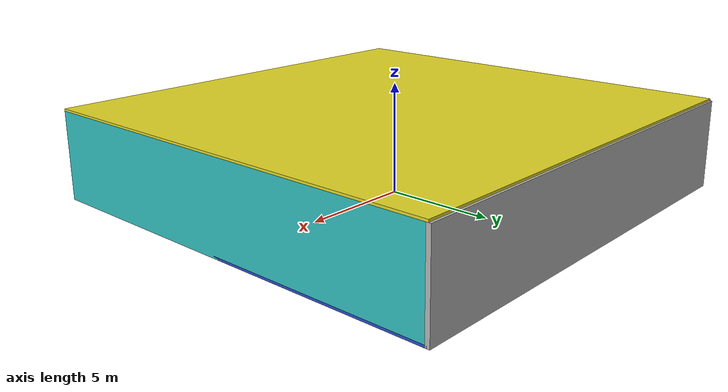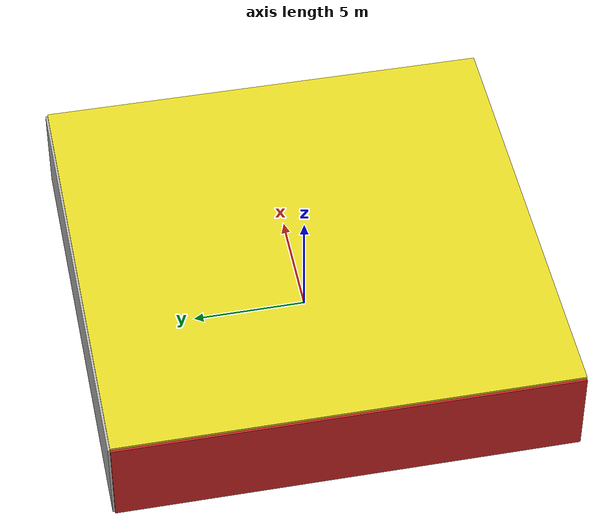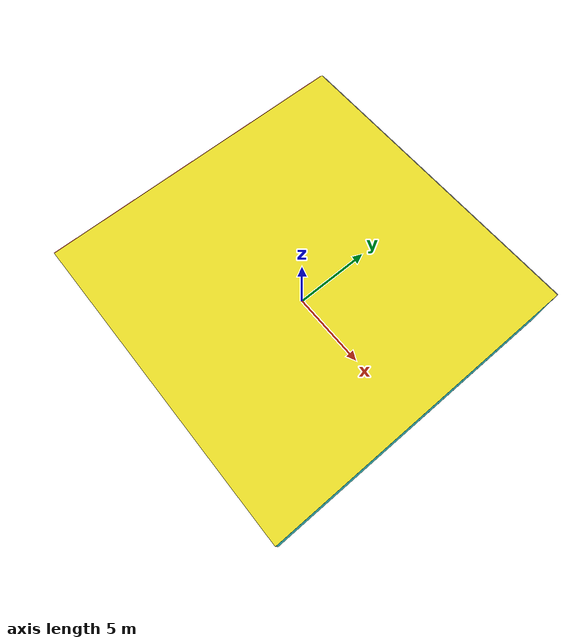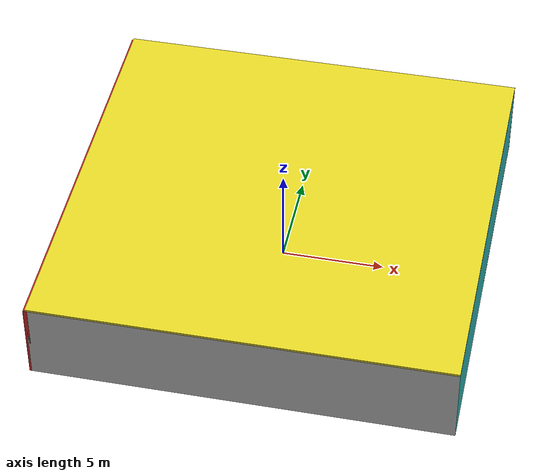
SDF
<sdf version="1.4">
 <world name="default">
  <physics type="ode">
   <max_step_size>0.001</max_step_size>
   <real_time_factor>1</real_time_factor>
   <real_time_update_rate>1000</real_time_update_rate>
   <gravity>0 0 -9.8</gravity>
  </physics>
  <scene><ambient>0.4 0.4 0.4 1</ambient><background>0.7 0.7 0.7 1</background><shadows>1</shadows></scene>
  <model name="Surrounding">
   <static>1</static>
   <link name="Ceiling">
    <collision name="Ceiling_Collision"><geometry><box><size>20 20 0.1</size></box></geometry></collision>
    <visual name="Ceiling_Visual">
     <geometry><box><size>20 20 0.1</size></box></geometry>
     <material>
      <script><uri>file://media/materials/scripts/gazebo.material</uri><name>Gazebo/Yellow</name></script>
     </material>
    </visual>
    <pose>0 0 4.05 0 0 0</pose>
   </link>
   <link name="Wall_South">
    <collision name="Wall_South_Collision">
     <geometry><box><size>20 0 4</size></box></geometry>
     <pose>0 0 2 0 -0 0</pose>
    </collision>
    <visual name="Wall_South_Visual">
     <pose>0 0 2 0 -0 0</pose>
     <geometry><box><size>20 0 4</size></box></geometry>
     <material>
      <script><uri>file://media/materials/scripts/gazebo.material</uri><name>Gazebo/JointAnchor</name></script>
     </material>
    </visual>
    <velocity_decay><linear>0</linear><angular>0</angular></velocity_decay>
    <pose>0 -10 0 0 -0 0</pose>
   </link>
   <link name="Wall_East">
    <collision name="Wall_21_Collision">
     <geometry><box><size>20 0 4</size></box></geometry>
     <pose>0 0 2 0 -0 0</pose>
    </collision>
    <visual name="Wall_21_Visual">
     <pose>0 0 2 0 -0 0</pose>
     <geometry><box><size>20 0 4</size></box></geometry>
     <material>
      <script><uri>file://media/materials/scripts/gazebo.material</uri><name>Gazebo/Turquoise</name></script>
     </material>
    </visual>
    <velocity_decay><linear>0</linear><angular>0</angular></velocity_decay>
    <pose>10 0 0 0 -0 1.5708</pose>
   </link>
   <link name="Wall_North">
    <collision name="Wall_22_Collision">
     <geometry><box><size>20 0.2 4</size></box></geometry>
     <pose>0 0 2 0 -0 0</pose>
    </collision>
    <visual name="Wall_22_Visual">
     <pose>0 0 2 0 -0 0</pose>
     <geometry><box><size>20 0.2 4</size></box></geometry>
     <material>
      <script><uri>file://media/materials/scripts/gazebo.material</uri><name>Gazebo/CloudySky</name></script>
     </material>
    </visual>
    <velocity_decay><linear>0</linear><angular>0</angular></velocity_decay>
    <pose>0 10 0 0 -0 0</pose>
   </link>
   <link name="Wall_West">
    <collision name="Wall_23_Collision">
     <geometry><box><size>20 0.2 4</size></box></geometry>
     <pose>0 0 2 0 -0 0</pose>
    </collision>
    <visual name="Wall_23_Visual">
     <pose>0 0 2 0 -0 0</pose>
     <geometry><box><size>20 0.2 4</size></box></geometry>
     <material>
      <script><uri>file://media/materials/scripts/gazebo.material</uri><name>Gazebo/RedGlow</name></script>
     </material>
    </visual>
    <velocity_decay><linear>0</linear><angular>0</angular></velocity_decay>
    <pose>-10 0 0 0 0 -1.5708</pose>
   </link>
   <link name="Ground_link">
    <collision name="collision">
     <pose>0 0 .05 0 -0 0</pose>
     <geometry><box><size>20 20 0.1</size></box></geometry>
    </collision>
    <visual name="visual">
     <pose>0 0 .05 0 -0 0</pose>
     <geometry><box><size>20 20 0.1</size></box></geometry>
     <material>
      <script><uri>file://media/materials/scripts/gazebo.material</uri><name>Gazebo/BlueGlow</name></script>
     </material>
    </visual>
   </link>
   <static>1</static>
  </model>
  <spherical_coordinates>
   <surface_model>EARTH_WGS84</surface_model>
   <latitude_deg>0</latitude_deg>
   <longitude_deg>0</longitude_deg>
   <elevation>0</elevation>
   <heading_deg>0</heading_deg>
  </spherical_coordinates>
  <light name="lightball_0" type="diffuse">
   <diffuse>0.8 0.8 0.8 1</diffuse>
   <specular>0.2 0.2 0.2 1</specular>
   <attenuation>
    <range>100</range>
    <constant>0.7</constant>
    <linear>0.01</linear>
    <quadratic>0.001</quadratic>
   </attenuation>
   <direction>-0.5 0.1 -0.9</direction>
   <pose>7.07884374582 2.98780971192 2.43274054009 0 0 0</pose>
  </light>
  <light name="lightball_1" type="diffuse">
   <diffuse>0.8 0.8 0.8 1</diffuse>
   <specular>0.2 0.2 0.2 1</specular>
   <attenuation>
    <range>100</range>
    <constant>0.7</constant>
    <linear>0.01</linear>
    <quadratic>0.001</quadratic>
   </attenuation>
   <direction>-0.5 0.1 -0.9</direction>
   <pose>8.66510975555 4.16340272409 2.924694152 0 0 0</pose>
  </light>
  <light name="lightball_2" type="diffuse">
   <diffuse>0.8 0.8 0.8 1</diffuse>
   <specular>0.2 0.2 0.2 1</specular>
   <attenuation>
    <range>100</range>
    <constant>0.7</constant>
    <linear>0.01</linear>
    <quadratic>0.001</quadratic>
   </attenuation>
   <direction>-0.5 0.1 -0.9</direction>
   <pose>2.53015025423 5.54509167433 0.798924389379 0 0 0</pose>
  </light>
  <light name="lightball_3" type="diffuse">
   <diffuse>0.8 0.8 0.8 1</diffuse>
   <specular>0.2 0.2 0.2 1</specular>
   <attenuation>
    <range>100</range>
    <constant>0.7</constant>
    <linear>0.01</linear>
    <quadratic>0.001</quadratic>
   </attenuation>
   <direction>-0.5 0.1 -0.9</direction>
   <pose>-6.56321166937 3.92739646006 3.03043053675 0 0 0</pose>
  </light>
  <light name="lightball_4" type="diffuse">
   <diffuse>0.8 0.8 0.8 1</diffuse>
   <specular>0.2 0.2 0.2 1</specular>
   <attenuation>
    <range>100</range>
    <constant>0.7</constant>
    <linear>0.01</linear>
    <quadratic>0.001</quadratic>
   </attenuation>
   <direction>-0.5 0.1 -0.9</direction>
   <pose>2.63198492563 8.43262481833 0.691272414987 0 0 0</pose>
  </light>
  <light name="lightball_5" type="diffuse">
   <diffuse>0.8 0.8 0.8 1</diffuse>
   <specular>0.2 0.2 0.2 1</specular>
   <attenuation>
    <range>100</range>
    <constant>0.7</constant>
    <linear>0.01</linear>
    <quadratic>0.001</quadratic>
   </attenuation>
   <direction>-0.5 0.1 -0.9</direction>
   <pose>-8.21845663954 7.46392533617 2.38790011032 0 0 0</pose>
  </light>
  <light name="lightball_6" type="diffuse">
   <diffuse>0.8 0.8 0.8 1</diffuse>
   <specular>0.2 0.2 0.2 1</specular>
   <attenuation>
    <range>100</range>
    <constant>0.7</constant>
    <linear>0.01</linear>
    <quadratic>0.001</quadratic>
   </attenuation>
   <direction>-0.5 0.1 -0.9</direction>
   <pose>-4.0078899212 6.75463289964 1.60416115936 0 0 0</pose>
  </light>
  <light name="lightball_7" type="diffuse">
   <diffuse>0.8 0.8 0.8 1</diffuse>
   <specular>0.2 0.2 0.2 1</specular>
   <attenuation>
    <range>100</range>
    <constant>0.7</constant>
    <linear>0.01</linear>
    <quadratic>0.001</quadratic>
   </attenuation>
   <direction>-0.5 0.1 -0.9</direction>
   <pose>-8.37305915782 -8.52022919696 3.22070603112 0 0 0</pose>
  </light>
  <light name="lightball_8" type="diffuse">
   <diffuse>0.8 0.8 0.8 1</diffuse>
   <specular>0.2 0.2 0.2 1</specular>
   <attenuation>
    <range>100</range>
    <constant>0.7</constant>
    <linear>0.01</linear>
    <quadratic>0.001</quadratic>
   </attenuation>
   <direction>-0.5 0.1 -0.9</direction>
   <pose>-7.91652853066 7.73484768723 1.52863949398 0 0 0</pose>
  </light>
  <light name="lightball_9" type="diffuse">
   <diffuse>0.8 0.8 0.8 1</diffuse>
   <specular>0.2 0.2 0.2 1</specular>
   <attenuation>
    <range>100</range>
    <constant>0.7</constant>
    <linear>0.01</linear>
    <quadratic>0.001</quadratic>
   </attenuation>
   <direction>-0.5 0.1 -0.9</direction>
   <pose>1.43422938658 6.29354137624 1.84556728144 0 0 0</pose>
  </light>
  <light name="lightball_10" type="diffuse">
   <diffuse>0.8 0.8 0.8 1</diffuse>
   <specular>0.2 0.2 0.2 1</specular>
   <attenuation>
    <range>100</range>
    <constant>0.7</constant>
    <linear>0.01</linear>
    <quadratic>0.001</quadratic>
   </attenuation>
   <direction>-0.5 0.1 -0.9</direction>
   <pose>-9.29509854927 -9.31546412829 2.20827814718 0 0 0</pose>
  </light>
  <light name="lightball_11" type="diffuse">
   <diffuse>0.8 0.8 0.8 1</diffuse>
   <specular>0.2 0.2 0.2 1</specular>
   <attenuation>
    <range>100</range>
    <constant>0.7</constant>
    <linear>0.01</linear>
    <quadratic>0.001</quadratic>
   </attenuation>
   <direction>-0.5 0.1 -0.9</direction>
   <pose>-3.9054680697 -7.53129319735 3.06706030394 0 0 0</pose>
  </light>
  <include><uri>model://table</uri><pose>-4.52135528579 1.86925396317 0 0 0 0.442542084546</pose></include>
  <include>
   <uri>model://construction_cone</uri>
   <pose>-5.03515802662 8.22139809605 0 0 0 1.17904248158</pose>
  </include>
  <include><uri>model://table</uri><pose>-2.0826909436 -4.36935624591 0 0 0 0.425967925502</pose></include>
 </world>
</sdf>

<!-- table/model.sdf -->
<sdf version="1.5">
  <model name="table">
    <static>true</static>
    <link name="link">
      <collision name="surface">
        <pose>0 0 1.0 0 0 0</pose>
        <geometry>
          <box>
            <size>1.5 0.8 0.03</size>
          </box>
        </geometry>
        <surface>
          <friction>
            <ode>
              <mu>0.6</mu>
              <mu2>0.6</mu2>
            </ode>
          </friction>
        </surface>
      </collision>
      <visual name="visual1">
        <pose>0 0 1.0 0 0 0</pose>
        <geometry>
          <box>
            <size>1.5 0.8 0.03</size>
          </box>
        </geometry>
        <material>
          <script>
            <uri>model://media/materials/scripts/gazebo.material</uri>
            <name>Gazebo/Wood</name>
          </script>
        </material>
      </visual>
      <collision name="front_left_leg">
        <pose>0.68 0.38 0.5 0 0 0</pose>
        <geometry>
          <cylinder>
            <radius>0.02</radius>
            <length>1.0</length>
          </cylinder>
        </geometry>
      </collision>
      <visual name="front_left_leg">
        <pose>0.68 0.38 0.5 0 0 0</pose>
        <geometry>
          <cylinder>
            <radius>0.02</radius>
            <length>1.0</length>
          </cylinder>
        </geometry>
        <material>
          <script>
            <uri>model://media/materials/scripts/gazebo.material</uri>
            <name>Gazebo/Grey</name>
          </script>
        </material>
      </visual>
      <collision name="front_right_leg">
        <pose>0.68 -0.38 0.5 0 0 0</pose>
        <geometry>
          <cylinder>
            <radius>0.02</radius>
            <length>1.0</length>
          </cylinder>
        </geometry>
      </collision>
      <visual name="front_right_leg">
        <pose>0.68 -0.38 0.5 0 0 0</pose>
        <geometry>
          <cylinder>
            <radius>0.02</radius>
            <length>1.0</length>
          </cylinder>
        </geometry>
        <material>
          <script>
            <uri>model://media/materials/scripts/gazebo.material</uri>
            <name>Gazebo/Grey</name>
          </script>
        </material>
      </visual>
      <collision name="back_right_leg">
        <pose>-0.68 -0.38 0.5 0 0 0</pose>
        <geometry>
          <cylinder>
            <radius>0.02</radius>
            <length>1.0</length>
          </cylinder>
        </geometry>
      </collision>
      <visual name="back_right_leg">
        <pose>-0.68 -0.38 0.5 0 0 0</pose>
        <geometry>
          <cylinder>
            <radius>0.02</radius>
            <length>1.0</length>
          </cylinder>
        </geometry>
        <material>
          <script>
            <uri>model://media/materials/scripts/gazebo.material</uri>
            <name>Gazebo/Grey</name>
          </script>
        </material>
      </visual>
      <collision name="back_left_leg">
        <pose>-0.68 0.38 0.5 0 0 0</pose>
        <geometry>
          <cylinder>
            <radius>0.02</radius>
            <length>1.0</length>
          </cylinder>
        </geometry>
      </collision>
      <visual name="back_left_leg">
        <pose>-0.68 0.38 0.5 0 0 0</pose>
        <geometry>
          <cylinder>
            <radius>0.02</radius>
            <length>1.0</length>
          </cylinder>
        </geometry>
        <material>
          <script>
            <uri>model://media/materials/scripts/gazebo.material</uri>
            <name>Gazebo/Grey</name>
          </script>
        </material>
      </visual>
    </link>
  </model>
</sdf>

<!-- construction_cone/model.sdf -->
<sdf version="1.5">
  <model name="Construction Cone">
    <link name="link">
      <collision name="collision">
        <geometry>
          <mesh>
            <scale>10 10 10</scale>
            <uri>file://isr-testbed/construction_cone/meshes/construction_cone.dae</uri>
          </mesh>
        </geometry>
      </collision>
      <visual name="visual">
        <geometry>
          <mesh>
            <scale>10 10 10</scale>
            <uri>file://isr-testbed/construction_cone/meshes/construction_cone.dae</uri>
          </mesh>
        </geometry>
      </visual>
    </link>
  </model>
</sdf>
